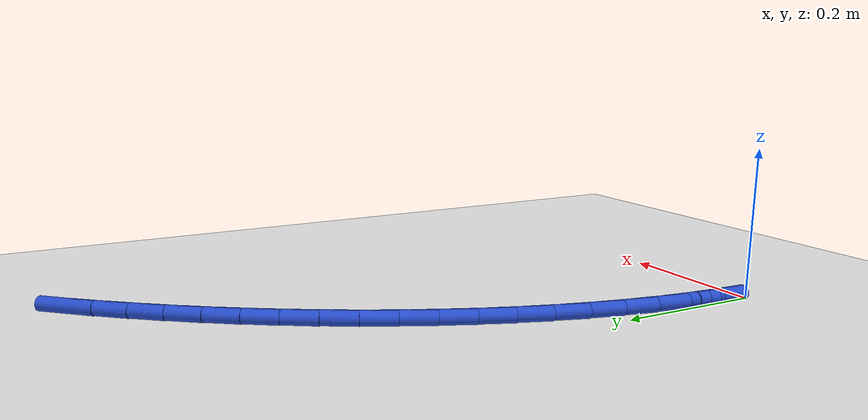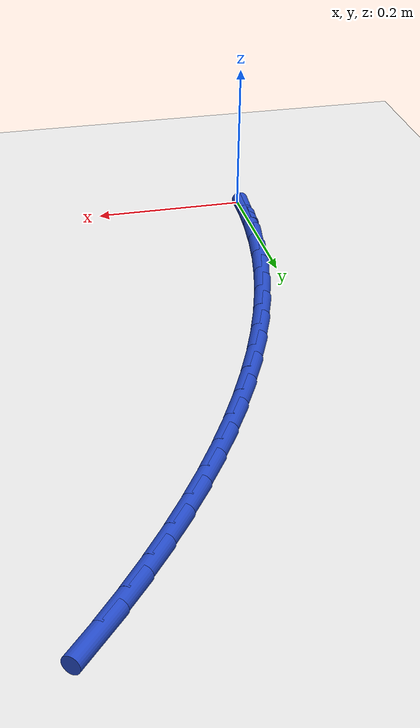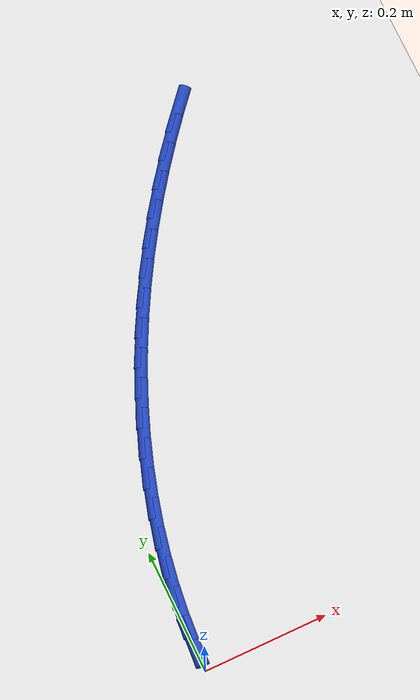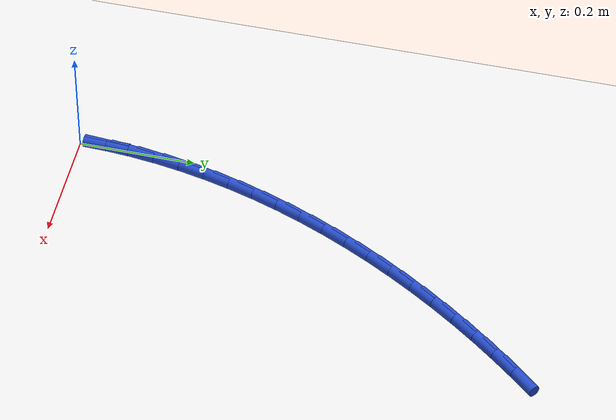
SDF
<sdf version="1.6">
 <world name="default">
  <model name="ground_plane">
   <static>1</static>
   <link name="link">
    <collision name="collision">
     <geometry><plane><normal>0 0 1</normal><size>100 100</size></plane></geometry>
     <surface><friction><ode><mu>100</mu><mu2>50</mu2></ode></friction></surface>
    </collision>
    <visual name="visual">
     <cast_shadows>0</cast_shadows>
     <geometry><plane><normal>0 0 1</normal><size>100 100</size></plane></geometry>
     <material>
      <script><uri>file://media/materials/scripts/gazebo.material</uri><name>Gazebo/WhiteGlow</name></script>
     </material>
    </visual>
   </link>
  </model>
  <model name="line">
   <link name="link_1">
    <pose>0.0015873954386153588 0.047301459667661416 0.01 0 1.57 1.489936352947675</pose>
    <collision name="collision">
     <geometry><cylinder><radius>0.01</radius><length>0.08</length></cylinder></geometry>
    </collision>
    <visual name="visual">
     <material>
      <script><name>Gazebo/Blue</name><uri>file://media/materials/scripts/gazebo.material</uri></script>
     </material>
     <geometry><cylinder><radius>0.01</radius><length>0.08</length></cylinder></geometry>
    </visual>
   </link>
   <link name="link_2">
    <pose>0.005396834196003874 0.09431028854311867 0.01 0 1.57 1.4438797213239627</pose>
    <collision name="collision">
     <geometry><cylinder><radius>0.01</radius><length>0.08</length></cylinder></geometry>
    </collision>
    <visual name="visual">
     <material>
      <script><name>Gazebo/Blue</name><uri>file://media/materials/scripts/gazebo.material</uri></script>
     </material>
     <geometry><cylinder><radius>0.01</radius><length>0.08</length></cylinder></geometry>
    </visual>
   </link>
   <link name="link_3">
    <pose>0.01135394481383041 0.14099520286789244 0.01 0 1.57 1.3991697899921811</pose>
    <collision name="collision">
     <geometry><cylinder><radius>0.01</radius><length>0.08</length></cylinder></geometry>
    </collision>
    <visual name="visual">
     <material>
      <script><name>Gazebo/Blue</name><uri>file://media/materials/scripts/gazebo.material</uri></script>
     </material>
     <geometry><cylinder><radius>0.01</radius><length>0.08</length></cylinder></geometry>
    </visual>
   </link>
   <link name="link_4">
    <pose>0.019384355833759824 0.18732491888350322 0.01 0 1.57 1.3558695304690316</pose>
    <collision name="collision">
     <geometry><cylinder><radius>0.01</radius><length>0.08</length></cylinder></geometry>
    </collision>
    <visual name="visual">
     <material>
      <script><name>Gazebo/Blue</name><uri>file://media/materials/scripts/gazebo.material</uri></script>
     </material>
     <geometry><cylinder><radius>0.01</radius><length>0.08</length></cylinder></geometry>
    </visual>
   </link>
   <link name="link_5">
    <pose>0.029413695797456972 0.23326815283147184 0.01 0 1.57 1.314016853170868</pose>
    <collision name="collision">
     <geometry><cylinder><radius>0.01</radius><length>0.08</length></cylinder></geometry>
    </collision>
    <visual name="visual">
     <material>
      <script><name>Gazebo/Blue</name><uri>file://media/materials/scripts/gazebo.material</uri></script>
     </material>
     <geometry><cylinder><radius>0.01</radius><length>0.08</length></cylinder></geometry>
    </visual>
   </link>
   <link name="link_6">
    <pose>0.04136759324658672 0.2787936209533189 0.01 0 1.57 1.2736270512572747</pose>
    <collision name="collision">
     <geometry><cylinder><radius>0.01</radius><length>0.08</length></cylinder></geometry>
    </collision>
    <visual name="visual">
     <material>
      <script><name>Gazebo/Blue</name><uri>file://media/materials/scripts/gazebo.material</uri></script>
     </material>
     <geometry><cylinder><radius>0.01</radius><length>0.08</length></cylinder></geometry>
    </visual>
   </link>
   <link name="link_7">
    <pose>0.055171676722813895 0.3238700394905648 0.01 0 1.57 1.234695579645177</pose>
    <collision name="collision">
     <geometry><cylinder><radius>0.01</radius><length>0.08</length></cylinder></geometry>
    </collision>
    <visual name="visual">
     <material>
      <script><name>Gazebo/Blue</name><uri>file://media/materials/scripts/gazebo.material</uri></script>
     </material>
     <geometry><cylinder><radius>0.01</radius><length>0.08</length></cylinder></geometry>
    </visual>
   </link>
   <link name="link_8">
    <pose>0.07075157476780337 0.36846612468473056 0.01 0 1.57 1.1971938949251435</pose>
    <collision name="collision">
     <geometry><cylinder><radius>0.01</radius><length>0.08</length></cylinder></geometry>
    </collision>
    <visual name="visual">
     <material>
      <script><name>Gazebo/Blue</name><uri>file://media/materials/scripts/gazebo.material</uri></script>
     </material>
     <geometry><cylinder><radius>0.01</radius><length>0.08</length></cylinder></geometry>
    </visual>
   </link>
   <link name="link_9">
    <pose>0.08803316975666235 0.41255032458278174 0.01 0 1.57 1.1610065011993582</pose>
    <collision name="collision">
     <geometry><cylinder><radius>0.01</radius><length>0.08</length></cylinder></geometry>
    </collision>
    <visual name="visual">
     <material>
      <script><name>Gazebo/Blue</name><uri>file://media/materials/scripts/gazebo.material</uri></script>
     </material>
     <geometry><cylinder><radius>0.01</radius><length>0.08</length></cylinder></geometry>
    </visual>
   </link>
   <link name="link_10">
    <pose>0.10694516865642821 0.45608810283306345 0.01 0 1.57 1.1260330669258578</pose>
    <collision name="collision">
     <geometry><cylinder><radius>0.01</radius><length>0.08</length></cylinder></geometry>
    </collision>
    <visual name="visual">
     <material>
      <script><name>Gazebo/Blue</name><uri>file://media/materials/scripts/gazebo.material</uri></script>
     </material>
     <geometry><cylinder><radius>0.01</radius><length>0.08</length></cylinder></geometry>
    </visual>
   </link>
   <link name="link_11">
    <pose>0.12741804255354874 0.49904305915608 0.01 0 1.57 1.092213098332053</pose>
    <collision name="collision">
     <geometry><cylinder><radius>0.01</radius><length>0.08</length></cylinder></geometry>
    </collision>
    <visual name="visual">
     <material>
      <script><name>Gazebo/Blue</name><uri>file://media/materials/scripts/gazebo.material</uri></script>
     </material>
     <geometry><cylinder><radius>0.01</radius><length>0.08</length></cylinder></geometry>
    </visual>
   </link>
   <link name="link_12">
    <pose>0.14938228942897605 0.5413787648562244 0.01 0 1.57 1.0594809484683612</pose>
    <collision name="collision">
     <geometry><cylinder><radius>0.01</radius><length>0.08</length></cylinder></geometry>
    </collision>
    <visual name="visual">
     <material>
      <script><name>Gazebo/Blue</name><uri>file://media/materials/scripts/gazebo.material</uri></script>
     </material>
     <geometry><cylinder><radius>0.01</radius><length>0.08</length></cylinder></geometry>
    </visual>
   </link>
   <link name="link_13">
    <pose>0.172768407263662 0.5830587912378887 0.01 0 1.57 1.0277665312381554</pose>
    <collision name="collision">
     <geometry><cylinder><radius>0.01</radius><length>0.08</length></cylinder></geometry>
    </collision>
    <visual name="visual">
     <material>
      <script><name>Gazebo/Blue</name><uri>file://media/materials/scripts/gazebo.material</uri></script>
     </material>
     <geometry><cylinder><radius>0.01</radius><length>0.08</length></cylinder></geometry>
    </visual>
   </link>
   <link name="link_14">
    <pose>0.1975068940385587 0.6240467096054656 0.01 0 1.57 0.9969965068718447</pose>
    <collision name="collision">
     <geometry><cylinder><radius>0.01</radius><length>0.08</length></cylinder></geometry>
    </collision>
    <visual name="visual">
     <material>
      <script><name>Gazebo/Blue</name><uri>file://media/materials/scripts/gazebo.material</uri></script>
     </material>
     <geometry><cylinder><radius>0.01</radius><length>0.08</length></cylinder></geometry>
    </visual>
   </link>
   <link name="link_15">
    <pose>0.22352824773461824 0.6643060912633478 0.01 0 1.57 0.9670952088650392</pose>
    <collision name="collision">
     <geometry><cylinder><radius>0.01</radius><length>0.08</length></cylinder></geometry>
    </collision>
    <visual name="visual">
     <material>
      <script><name>Gazebo/Blue</name><uri>file://media/materials/scripts/gazebo.material</uri></script>
     </material>
     <geometry><cylinder><radius>0.01</radius><length>0.08</length></cylinder></geometry>
    </visual>
   </link>
   <link name="link_16">
    <pose>0.2507629663327925 0.7038005075159275 0.01 0 1.57 0.9379853351118747</pose>
    <collision name="collision">
     <geometry><cylinder><radius>0.01</radius><length>0.08</length></cylinder></geometry>
    </collision>
    <visual name="visual">
     <material>
      <script><name>Gazebo/Blue</name><uri>file://media/materials/scripts/gazebo.material</uri></script>
     </material>
     <geometry><cylinder><radius>0.01</radius><length>0.08</length></cylinder></geometry>
    </visual>
   </link>
   <link name="link_17">
    <pose>0.27914154781403366 0.7424935296675973 0.01 0 1.57 0.909588427660407</pose>
    <collision name="collision">
     <geometry><cylinder><radius>0.01</radius><length>0.08</length></cylinder></geometry>
    </collision>
    <visual name="visual">
     <material>
      <script><name>Gazebo/Blue</name><uri>file://media/materials/scripts/gazebo.material</uri></script>
     </material>
     <geometry><cylinder><radius>0.01</radius><length>0.08</length></cylinder></geometry>
    </visual>
   </link>
   <link name="link_18">
    <pose>0.3085944901592935 0.7803487290227495 0.01 0 1.57 0.881825164968382</pose>
    <collision name="collision">
     <geometry><cylinder><radius>0.01</radius><length>0.08</length></cylinder></geometry>
    </collision>
    <visual name="visual">
     <material>
      <script><name>Gazebo/Blue</name><uri>file://media/materials/scripts/gazebo.material</uri></script>
     </material>
     <geometry><cylinder><radius>0.01</radius><length>0.08</length></cylinder></geometry>
    </visual>
   </link>
   <link name="link_19">
    <pose>0.3390522913495243 0.8173296768857771 0.01 0 1.57 0.8546154885025559</pose>
    <collision name="collision">
     <geometry><cylinder><radius>0.01</radius><length>0.08</length></cylinder></geometry>
    </collision>
    <visual name="visual">
     <material>
      <script><name>Gazebo/Blue</name><uri>file://media/materials/scripts/gazebo.material</uri></script>
     </material>
     <geometry><cylinder><radius>0.01</radius><length>0.08</length></cylinder></geometry>
    </visual>
   </link>
   <link name="link_161">
    <pose>0.0015991423778393826 0.047270052303065926 0.01 0 1.57 1.536979297514209</pose>
    <collision name="collision">
     <geometry><cylinder><radius>0.01</radius><length>0.08</length></cylinder></geometry>
    </collision>
    <visual name="visual">
     <material>
      <script><name>Gazebo/Blue</name><uri>file://media/materials/scripts/gazebo.material</uri></script>
     </material>
     <geometry><cylinder><radius>0.01</radius><length>0.08</length></cylinder></geometry>
    </visual>
   </link>
  </model>
 </world>
</sdf>
